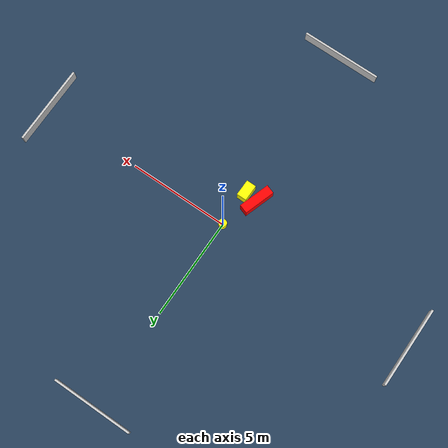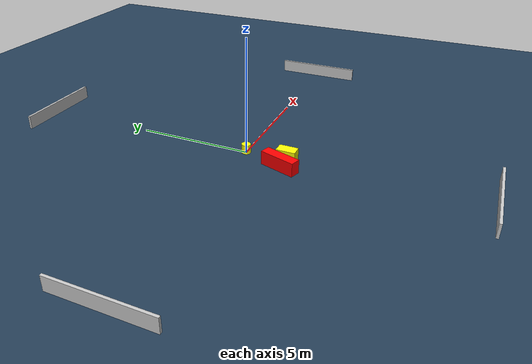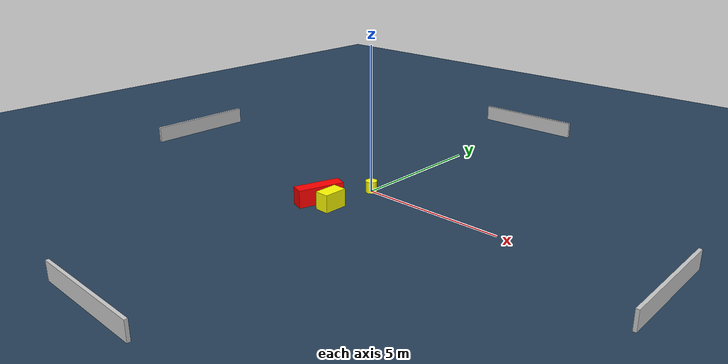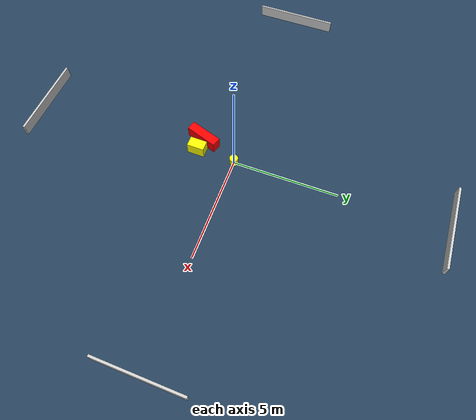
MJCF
<?xml version="1.0" ?>
<mujoco model="generated_environment">
  <option timestep="0.01" integrator="RK4" cone="elliptic"/>
  <default>
    <geom density="1"/>
  </default>
  <asset>
    <texture builtin="gradient" height="3072" name="skybox" rgb1="0.3 0.5 0.7" rgb2="0 0 0" type="skybox" width="512"/>
    <texture builtin="checker" height="300" name="groundplane" rgb1="0.2 0.3 0.4" rgb2="0.1 0.2 0.3" type="2d" width="300"/>
    <material name="groundplane" reflectance="0.2" texrepeat="5 5" texture="groundplane"/>
  </asset>
  <worldbody>
    <light dir="0 0 -1" directional="true" pos="0 0 1.5"/>
    <geom condim="3" friction="0.5 0.005 0.001" material="groundplane" name="floor" pos="0 0 0" size="0 0 0.05" type="plane"/>
    <body name="walls">
      <geom name="wall_1" condim="4" pos="-10.0 0.0 0.3" rgba="0.800000011920929 0.800000011920929 0.800000011920929 1.0" size="0.05 2.0 0.3" type="box"/>
      <geom name="wall_2" condim="4" pos="10.0 0.0 0.3" rgba="0.800000011920929 0.800000011920929 0.800000011920929 1.0" size="0.05 2.0 0.3" type="box"/>
      <geom name="wall_3" condim="4" pos="0.0 -10.0 0.3" rgba="0.800000011920929 0.800000011920929 0.800000011920929 1.0" size="2.0 0.05 0.3" type="box"/>
      <geom name="wall_4" condim="4" pos="0.0 10.0 0.3" rgba="0.800000011920929 0.800000011920929 0.800000011920929 1.0" size="2.0 0.05 0.3" type="box"/>
    </body>
    <body name="robot">
      <joint name="joint_x" type="slide" pos="0 0 0" axis="1 0 0"/>
      <joint name="joint_y" type="slide" pos="0 0 0" axis="0 1 0"/>
      <geom name="robot" type="cylinder" pos="0.0 0.0 0.2" size="0.2 0.2 0.0" mass="5.0" friction="1.0 0.005 0.0001" condim="4" rgba="1.0 1.0 0.0 1.0"/>
    </body>
    <body name="obstacle_1_movable">
      <geom name="obstacle_1_movable" condim="4" pos="-0.04845518622407185 -1.8562814552988498 0.3" euler="0 0 179.44204392127372" friction="0.0 0.005 0.001" rgba="1.0 1.0 0.0 1.0" size="0.24463116964290738 0.4070363134431931 0.3" type="box" mass="0.1"/>
      <joint type="free"/>
    </body>
    <body name="obstacle_2_static">
      <geom name="obstacle_2_static" condim="4" pos="-0.6782510244258478 -1.7799832615422584 0.3" euler="0 0 161.7550637426847" friction="0.0 0.005 0.001" rgba="1.0 0.0 0.0 1.0" size="0.22511220434562854 0.7895361661209077 0.3" type="box"/>
    </body>
  </worldbody>
  <actuator>
    <motor name="actuator_x" joint="joint_x" gear="1" ctrlrange="-1 1"/>
    <motor name="actuator_y" joint="joint_y" gear="1" ctrlrange="-1 1"/>
  </actuator>
</mujoco>
